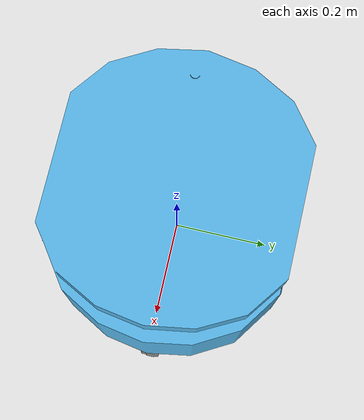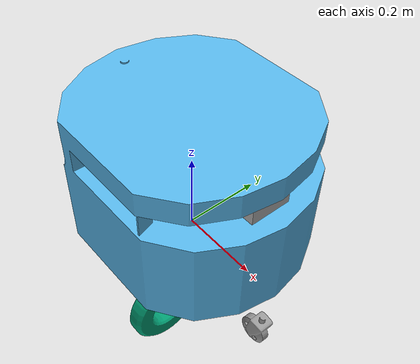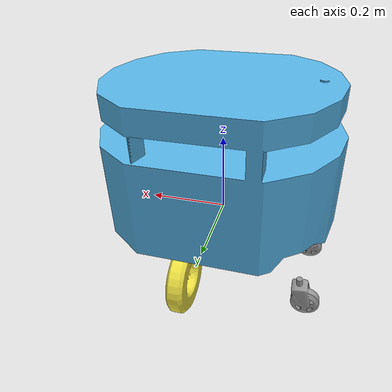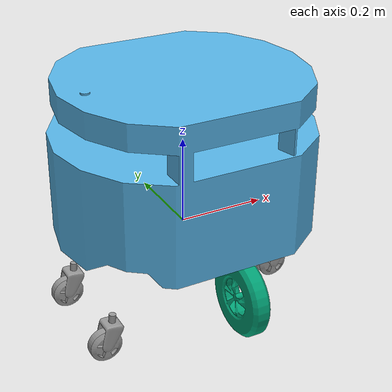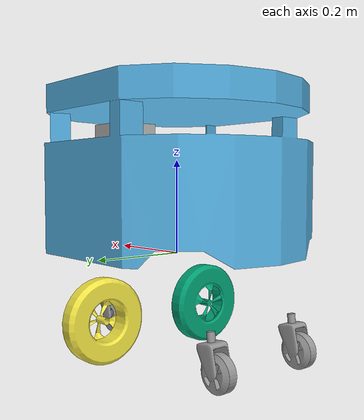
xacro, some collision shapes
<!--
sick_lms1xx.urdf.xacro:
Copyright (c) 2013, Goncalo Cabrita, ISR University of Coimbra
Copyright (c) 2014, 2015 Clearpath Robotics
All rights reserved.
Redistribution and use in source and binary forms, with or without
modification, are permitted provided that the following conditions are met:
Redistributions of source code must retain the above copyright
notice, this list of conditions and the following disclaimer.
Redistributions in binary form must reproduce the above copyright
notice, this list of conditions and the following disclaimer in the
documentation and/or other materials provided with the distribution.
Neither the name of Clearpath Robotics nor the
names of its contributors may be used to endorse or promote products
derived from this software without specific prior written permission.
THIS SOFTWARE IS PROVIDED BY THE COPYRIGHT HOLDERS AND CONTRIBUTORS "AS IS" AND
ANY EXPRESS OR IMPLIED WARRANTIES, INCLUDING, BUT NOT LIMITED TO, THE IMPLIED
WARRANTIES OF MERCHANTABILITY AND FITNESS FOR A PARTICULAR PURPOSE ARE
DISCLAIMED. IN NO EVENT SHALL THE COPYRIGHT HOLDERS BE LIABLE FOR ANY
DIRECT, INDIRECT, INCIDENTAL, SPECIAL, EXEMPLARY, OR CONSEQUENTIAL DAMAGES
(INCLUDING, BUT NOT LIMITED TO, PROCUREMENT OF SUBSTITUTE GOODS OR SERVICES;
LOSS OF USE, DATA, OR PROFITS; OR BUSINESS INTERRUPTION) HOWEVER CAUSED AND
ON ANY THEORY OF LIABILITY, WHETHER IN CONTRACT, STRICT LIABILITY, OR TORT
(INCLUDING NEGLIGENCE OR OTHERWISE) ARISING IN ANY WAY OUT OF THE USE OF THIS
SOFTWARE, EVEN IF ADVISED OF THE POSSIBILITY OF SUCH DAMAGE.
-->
<?xml version="1.0"?>
<robot xmlns:xacro="http://www.ros.org/wiki/xacro" name="patrolbot">
    <xacro:property name="base_width" value="0.483" />
    <xacro:property name="base_length" value="0.589" />
    <xacro:property name="wheel_radius" value="0.201" />
    <xacro:property name="wheel_center_distance_y" value="0.147" />
    <xacro:property name="ground_clearance" value="0.051" />
    <xacro:property name="base_height" value="${0.378-ground_clearance}" />
    <xacro:property name="z_offset" value="${(0.378-ground_clearance)/2}" />
    <xacro:include filename="$(find patrolbot_description)/urdf/wheel.xacro" />
    <xacro:include filename="$(find patrolbot_description)/urdf/caster.xacro" />
    <xacro:include filename="$(find lms1xx)/urdf/sick_lms1xx.urdf.xacro" />
    <link name="base_footprint">
    </link>
    <joint name="base_footprint_joint" type="fixed">
        <origin rpy="0 0 0" xyz="0 0 0" />
        <parent link="base_footprint" />
        <child link="base_link" />
    </joint>
    <link name="base_link">
        <inertial>
            <mass value="1" />
            <origin xyz="0 0 0" rpy="0 0 0" />
            <inertia ixx="0.001" ixy="0.0" ixz="0.001" iyy="1" iyz="0.0" izz="0.001" />
        </inertial>
        <collision>
            <origin xyz="0 0 0" rpy="0 0 0" />
            <geometry>
                <mesh filename="package://patrolbot_description/meshes/hull.stl" />
            </geometry>
        </collision>
        <visual>
            <origin xyz="0 0 0" rpy="0 0 0" />
            <geometry>
                <mesh filename="package://patrolbot_description/meshes/hull.stl" />
            </geometry>
        </visual>
    </link>
    <xacro:drive_wheel prefix="right" parent="base_link">
        <origin xyz="${wheel_center_distance_x} ${-wheel_center_distance_y} ${-z_offset+ground_clearance/2}" />
    </xacro:drive_wheel>
    <xacro:drive_wheel prefix="left" parent="base_link">
        <origin xyz="${wheel_center_distance_x} ${wheel_center_distance_y} ${-z_offset+ground_clearance/2}" />
    </xacro:drive_wheel>
    <xacro:caster_wheel prefix="front" parent="base_link">
        <origin xyz="${base_length/2-0.05} 0 ${-z_offset}" />
    </xacro:caster_wheel>
    <xacro:caster_wheel prefix="back_left" parent="base_link">
        <origin xyz="${-base_length/2+0.05} ${-base_width/3+0.05} ${-z_offset}" />
    </xacro:caster_wheel>
    <xacro:caster_wheel prefix="back_right" parent="base_link">
        <origin xyz="${-base_length/2+0.05} ${base_width/3-0.05} ${-z_offset}" />
    </xacro:caster_wheel>
    <xacro:sick_lms1xx />
    <joint name="laser_joint" type="fixed" >
        <origin xyz="${base_length/2-0.05-(0.105/2)} 0 ${base_height/2+0.075+ground_clearance}" rpy="0 0 0" />
        <parent link="base_link" />
        <child link="laser" />
    </joint>
    <gazebo>
        <plugin name="differential_drive_controller" filename="libgazebo_ros_diff_drive.so">

            <!-- Plugin update rate in Hz -->
            <updateRate>50</updateRate>

            <!-- Name of left joint, defaults to `left_joint` -->
            <leftJoint>left_drive_wheel_joint</leftJoint>

            <!-- Name of right joint, defaults to `right_joint` -->
            <rightJoint>right_drive_wheel_joint</rightJoint>

            <!-- The distance from the center of one wheel to the other, in meters, defaults to 0.34 m -->
            <wheelSeparation>${2*wheel_center_distance_y}</wheelSeparation>

            <!-- Diameter of the wheels, in meters, defaults to 0.15 m -->
            <wheelDiameter>${2*wheel_radius}</wheelDiameter>

            <!-- Wheel acceleration, in rad/s^2, defaults to 0.0 rad/s^2 -->
            <wheelAcceleration>1.0</wheelAcceleration>

            <!-- Maximum torque which the wheels can produce, in Nm, defaults to 5 Nm -->
            <wheelTorque>20</wheelTorque>

            <!-- Topic to receive geometry_msgs/Twist message commands, defaults to `cmd_vel` -->
            <commandTopic>cmd_vel</commandTopic>

            <!-- Topic to publish nav_msgs/Odometry messages, defaults to `odom` -->
            <odometryTopic>odom</odometryTopic>

            <!-- Odometry frame, defaults to `odom` -->
            <odometryFrame>odom</odometryFrame>

            <!-- Robot frame to calculate odometry from, defaults to `base_footprint` -->
            <robotBaseFrame>base_footprint</robotBaseFrame>

            <!-- Odometry source, 0 for ENCODER, 1 for WORLD, defaults to WORLD -->
            <odometrySource>1</odometrySource>

            <!-- Set to true to publish transforms for the wheel links, defaults to false -->
            <publishWheelTF>true</publishWheelTF>

            <!-- Set to true to publish transforms for the odometry, defaults to true -->
            <publishOdom>true</publishOdom>

            <!-- Set to true to publish sensor_msgs/JointState on /joint_states for the wheel joints, defaults to false -->
            <publishWheelJointState>true</publishWheelJointState>

            <!-- Set to true to swap right and left wheels, defaults to true -->
            <legacyMode>false</legacyMode>
        </plugin>
    </gazebo>
</robot>

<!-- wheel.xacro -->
<robot xmlns:xacro="http://www.ros.org/wiki/xacro" name="patrolbot">
    <xacro:property name="wheel_radius" value="0.201" />
    <xacro:property name="wheel_width" value="0.05" />
    <xacro:property name="wheel_mass" value="1" />
    <xacro:property name="ground_clearance" value="0.051" />
    <xacro:property name="wheel_center_distance_y" value="0.147" />
    <xacro:property name="wheel_center_distance_x" value="${0.137/2}" />
    <xacro:macro name="drive_wheel" params="prefix parent *origin">
        <link name="${prefix}_drive_wheel">
            <collision>
                <geometry>
                    <mesh filename="package://patrolbot_description/meshes/${prefix}_wheel.stl" />
                </geometry>
            </collision>
            <visual>
                <geometry>
                    <mesh filename="package://patrolbot_description/meshes/${prefix}_wheel.stl" />
                </geometry>
            </visual>
            <inertial>
                <mass value="${wheel_mass}" />
                <inertia ixx="0.001" ixy="0" ixz="0" iyy="0.001" iyz="0" izz="0.001" />
            </inertial>
        </link>
        <joint name="${prefix}_drive_wheel_joint" type="continuous">
            <parent link="${parent}" />
            <child link="${prefix}_drive_wheel" />
            <xacro:insert_block name="origin" />
            <axis xyz="0 1 0" />
            <dynamics damping="0.0" friction="0.0" />
        </joint>
        <transmission name="${prefix}_drive_wheel_trans">
            <type>transmission_interface/SimpleTransmission</type>
            <joint name="${prefix}_drive_wheel_joint">
                <hardwareInterface>VelocityJointInterface</hardwareInterface>
            </joint>
            <actuator name="${prefix}_drive_wheel_motor">
                <mechanicalReducation>1</mechanicalReducation>
            </actuator>
        </transmission>
        <gazebo reference="${prefix}_drive_wheel">
            <mu1 value="200.0" />
            <mu2 value="100.0" />
            <kp value="10000000.0" />
            <kd value="1.0" />
        </gazebo>
    </xacro:macro>
</robot>

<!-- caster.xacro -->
<robot xmlns:xacro="http://www.ros.org/wiki/xacro" name="patrolbot">
    <xacro:property name="ground_clearance" value="0.051" />
    <xacro:property name="base_width" value="0.483" />
    <xacro:property name="base_length" value="0.589" />
    <xacro:property name="caster_mass" value="1" />
    <xacro:property name="z_offset" value="${(0.378-ground_clearance)/2}" />
    <xacro:macro name="caster_wheel" params="prefix parent *origin">
        <link name="${prefix}_caster_wheel">
            <collision>
                <geometry>
                    <mesh filename="package://patrolbot_description/meshes/caster.stl" />
                </geometry>
            </collision>
            <visual>
                <geometry>
                    <mesh filename="package://patrolbot_description/meshes/caster.stl" />
                </geometry>
            </visual>
            <inertial>
                <mass value="${caster_mass}" />
                <inertia ixx="0.001" ixy="0" ixz="0" iyy="0.001" iyz="0" izz="0.001" />
            </inertial>
        </link>
        <joint name="${prefix}_drive_wheel_joint" type="fixed">
            <xacro:insert_block name="origin" />
            <parent link="${parent}" />
            <child link="${prefix}_caster_wheel" />
        </joint>
        <gazebo reference="${prefix}_caster_wheel">
            <mu1 value="0.0000001" />
            <mu2 value="0.0000001" />
            <kp value="10000000.0" />
            <kd value="1.0" />
            <material>Gazebo/Grey</material>
        </gazebo>
    </xacro:macro>
</robot>

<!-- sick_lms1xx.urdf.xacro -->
<robot xmlns:xacro="http://www.ros.org/wiki/xacro">

  <xacro:macro name="sick_lms1xx" params="frame:=laser topic:=scan sample_size:=720 update_rate:=5
               min_angle:=-2.35619 max_angle:=2.35619 min_range:=0.1 max_range:=30.0 robot_namespace:=/" >
    <link name="${frame}">
      <inertial>
        <mass value="1.1" />
        <origin xyz="0 0 0" />
        <inertia ixx="${0.0833333 * 1.1 * (0.102*0.102 + 0.152*0.152)}" ixy="0.0" ixz="0.0"
          iyy="${0.0833333 * 1.1 * (0.105*0.105 + 0.152*0.152)}" iyz="0.0"
          izz="${0.0833333 * 1.1 * (0.105*0.105 + 0.102*0.102)}" />
      </inertial>
      <visual>
        <origin xyz="0 0 0" rpy="0 0 0" />
        <geometry>
          <!-- Origin of this mesh is the focal point of the LIDAR. -->
          <mesh filename="file://$(find lms1xx)/meshes/sick-lms1xx.dae" />
        </geometry>
      </visual>
      <collision>
        <origin xyz="0 0 -0.05" rpy="0 0 0" />
        <geometry>
          <box size="0.105 0.1 0.1" />
        </geometry>
      </collision>
    </link>

    <gazebo reference="${frame}">
      <turnGravityOff>true</turnGravityOff>
      <sensor type="ray" name="${frame}">
        <pose>0 0 0 0 0 0</pose>
        <visualize>false</visualize>
        <update_rate>${update_rate}</update_rate>
        <ray>
          <scan>
            <horizontal>
              <samples>${sample_size}</samples>
              <resolution>1</resolution>
              <min_angle>${min_angle}</min_angle>
              <max_angle>${max_angle}</max_angle>
            </horizontal>
          </scan>
          <range>
            <min>${min_range}</min>
            <max>${max_range}</max>
            <resolution>0.01</resolution>
          </range>
          <noise>
            <type>gaussian</type>
            <mean>0.0</mean>
            <stddev>0.001</stddev>
          </noise>
        </ray>
        <plugin name="${frame}_scan" filename="libgazebo_ros_ray_sensor.so">
          <ros>
            <remapping>~/out:=${topic}</remapping>
            <qos>
              <topic name="${topic}">
                  <publisher>
                      <reliability>best_effort</reliability>
                  </publisher>
              </topic>
            </qos>
          </ros>
          <frame_name>${frame}</frame_name>
          <robot_namespace>${robot_namespace}</robot_namespace>
          <output_type>sensor_msgs/LaserScan</output_type>
        </plugin>
      </sensor>
    </gazebo>

  </xacro:macro>
</robot>
